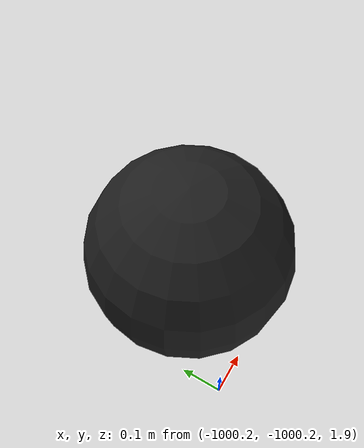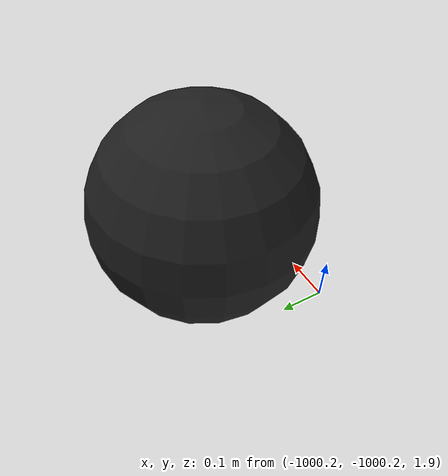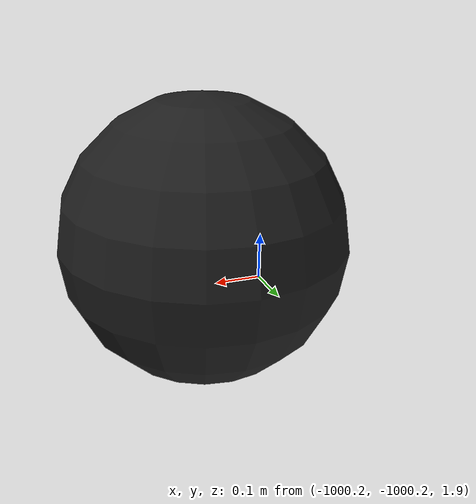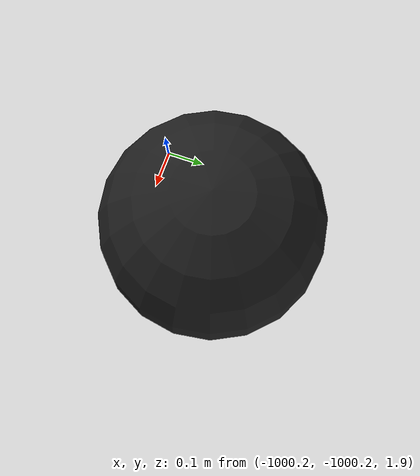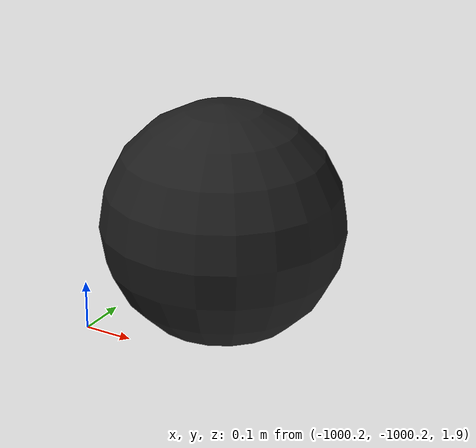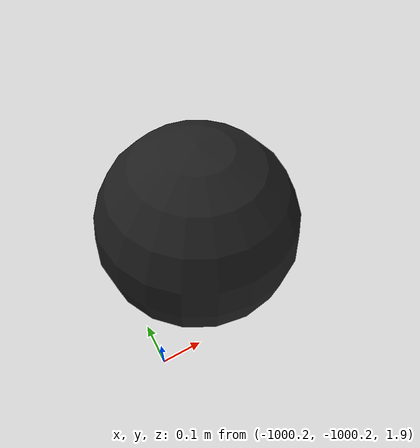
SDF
<?xml version="1.0" ?>
<?xml-model href="http://sdformat.org/schemas/root.xsd" schematypens="http://www.w3.org/2001/XMLSchema"?>
<sdf version="1.5">
  <world name="default">
    <plugin name="mrs_gazebo_static_transform_republisher_plugin" filename="libMRSGazeboStaticTransformRepublisher.so"/>
    <plugin name="map" filename="libDynamicMapPlugin.so">
      <center>50.345749 13.325244</center>
      <map_type>satellite</map_type>
      <api_key>AIzaSyCXlEq6cDC_6zkJ2NrS3YFFMQ4zfZ2vKP8</api_key>
      <use_cache>true</use_cache>
      <zoom>20</zoom>
      <spawn_distance>5</spawn_distance>
      <uav_names>uav1</uav_names>
    </plugin>

    <plugin name="pylons1" filename="libPowerlineGazeboPlugin.so">
      <center>50.345749 13.325244</center>
      <uav_name>uav1</uav_name>
      <file_path>/home/mrs/workspace/src/aerialcore_simulation/gps/V223-224ISPD.txt</file_path>
      <model_name>v223-v224_pylon</model_name>
      <refresh_rate>10</refresh_rate>
      <spawn_distance>500</spawn_distance>
    </plugin>
    <plugin name="pylons2" filename="libPowerlineGazeboPlugin.so">
      <center>50.345749 13.325244</center>
      <uav_name>uav1</uav_name>
      <file_path>/home/mrs/workspace/src/aerialcore_simulation/gps/V225-226ISPD.txt</file_path>
      <model_name>v223-v224_pylon</model_name>
      <refresh_rate>10</refresh_rate>
      <spawn_distance>500</spawn_distance>
    </plugin>
    <plugin name="pylons3" filename="libPowerlineGazeboPlugin.so">
      <center>50.345749 13.325244</center>
      <uav_name>uav1</uav_name>
      <file_path>/home/mrs/workspace/src/aerialcore_simulation/gps/V411ISPD.txt</file_path>
      <model_name>v223-v224_pylon</model_name>
      <refresh_rate>10</refresh_rate>
      <spawn_distance>500</spawn_distance>
    </plugin>
    <plugin name="pylons4" filename="libPowerlineGazeboPlugin.so">
      <center>50.345749 13.325244</center>
      <uav_name>uav1</uav_name>
      <file_path>/home/mrs/workspace/src/aerialcore_simulation/gps/V412-420ISPD.txt</file_path>
      <model_name>v223-v224_pylon</model_name>
      <refresh_rate>10</refresh_rate>
      <spawn_distance>500</spawn_distance>
    </plugin>
    <plugin name="pylons5" filename="libPowerlineGazeboPlugin.so">
      <center>50.345749 13.325244</center>
      <uav_name>uav1</uav_name>
      <file_path>/home/mrs/workspace/src/aerialcore_simulation/gps/V430ISPD.txt</file_path>
      <model_name>v223-v224_pylon</model_name>
      <refresh_rate>10</refresh_rate>
      <spawn_distance>500</spawn_distance>
    </plugin>
    <plugin name="pylons6" filename="libPowerlineGazeboPlugin.so">
      <center>50.345749 13.325244</center>
      <uav_name>uav1</uav_name>
      <file_path>/home/mrs/workspace/src/aerialcore_simulation/gps/V441ISPD.txt</file_path>
      <model_name>v223-v224_pylon</model_name>
      <refresh_rate>10</refresh_rate>
      <spawn_distance>500</spawn_distance>
    </plugin>
    <plugin name="pylons7" filename="libPowerlineGazeboPlugin.so">
      <center>50.345749 13.325244</center>
      <uav_name>uav1</uav_name>
      <file_path>/home/mrs/workspace/src/aerialcore_simulation/gps/V455-466ISPD.txt</file_path>
      <model_name>v223-v224_pylon</model_name>
      <refresh_rate>10</refresh_rate>
      <spawn_distance>500</spawn_distance>
    </plugin>
    <plugin name="pylons8" filename="libPowerlineGazeboPlugin.so">
      <center>50.345749 13.325244</center>
      <uav_name>uav1</uav_name>
      <file_path>/home/mrs/workspace/src/aerialcore_simulation/gps/V461-462ISPD.txt</file_path>
      <model_name>v223-v224_pylon</model_name>
      <refresh_rate>10</refresh_rate>
      <spawn_distance>500</spawn_distance>
    </plugin>
    <plugin name="pylons9" filename="libPowerlineGazeboPlugin.so">
      <center>50.345749 13.325244</center>
      <uav_name>uav1</uav_name>
      <file_path>/home/mrs/workspace/src/aerialcore_simulation/gps/V463-464ISPD.txt</file_path>
      <model_name>v223-v224_pylon</model_name>
      <refresh_rate>10</refresh_rate>
      <spawn_distance>500</spawn_distance>
    </plugin>
    <plugin name="pylons10" filename="libPowerlineGazeboPlugin.so">
      <center>50.345749 13.325244</center>
      <uav_name>uav1</uav_name>
      <file_path>/home/mrs/workspace/src/aerialcore_simulation/gps/V465-466ISPD.txt</file_path>
      <model_name>v223-v224_pylon</model_name>
      <refresh_rate>10</refresh_rate>
      <spawn_distance>500</spawn_distance>
    </plugin>
    <!-- coordinate system {-->
    <spherical_coordinates>
      <surface_model>EARTH_WGS84</surface_model>
      <latitude_deg>47.397743</latitude_deg>
      <longitude_deg>8.545594</longitude_deg>
      <elevation>0.0</elevation>
      <heading_deg>0</heading_deg>
    </spherical_coordinates>

    <!-- physics engine {-->
    <physics name="default_physics" default="0" type="ode">
      <gravity>0 0 -9.8066</gravity>
      <ode>
        <solver>
          <type>quick</type>
          <iters>10</iters>
          <sor>1.3</sor>
          <use_dynamic_moi_rescaling>0</use_dynamic_moi_rescaling>
        </solver>
        <constraints>
          <cfm>0</cfm>
          <erp>0.2</erp>
          <contact_max_correcting_vel>1000</contact_max_correcting_vel>
          <contact_surface_layer>0.001</contact_surface_layer>
        </constraints>
      </ode>
      <max_step_size>0.004</max_step_size>
      <real_time_factor>1</real_time_factor>
      <real_time_update_rate>250</real_time_update_rate>
      <magnetic_field>6.0e-06 2.3e-05 -4.2e-05</magnetic_field>
    </physics>

    <!-- turn off shadows {-->
    <scene>
      <shadows>false</shadows>
      <sky>
        <clouds/>
      </sky>
    </scene>

    <!-- sun {-->
    <light type="directional" name="sun">
      <cast_shadows>true</cast_shadows>
      <pose>250 250 600 0 0 0</pose>
      <diffuse>0.8 0.8 0.8 1</diffuse>
      <specular>0.2 0.2 0.2 1</specular>
      <attenuation>
        <range>1000</range>
        <constant>0.9</constant>
        <linear>0.01</linear>
        <quadratic>0.001</quadratic>
      </attenuation>
      <direction>0 0 -1</direction>
    </light>

    <!-- THE VOID (for spawning objects out of camera view) {-->
    <model name='the_void'>
      <static>1</static>
      <link name='link'>
        <pose frame=''>0 0 0.1 0 -0 0</pose>
        <visual name='the_void'>
          <pose frame=''>0 0 2 0 -0 0</pose>
          <geometry>
            <sphere>
              <radius>0.25</radius>
            </sphere>
          </geometry>
          <material>
            <script>
              <uri>file://media/materials/scripts/Gazebo.material</uri>
              <name>Gazebo/Black</name>
            </script>
          </material>
        </visual>
        <self_collide>0</self_collide>
        <enable_wind>0</enable_wind>
        <kinematic>0</kinematic>
      </link>
      <pose frame=''>-1000 -1000 0 0 0 0</pose>
    </model>

  <!-- user camera {-->
    <gui>
      <camera name="camera">
        <pose>-60 -100 30 0 0.4 0.89</pose>
      </camera>
    </gui>

    <!-- GUI frame synchronization {-->
    <plugin name="mrs_gazebo_rviz_cam_synchronizer" filename="libMRSGazeboRvizCameraSynchronizer.so" >
      <target_frame_id>gazebo_user_camera</target_frame_id>
      <world_origin_frame_id>uav1/gps_origin</world_origin_frame_id>
      <frame_to_follow>uav1::base_link</frame_to_follow>
    </plugin>

  </world>
</sdf>
